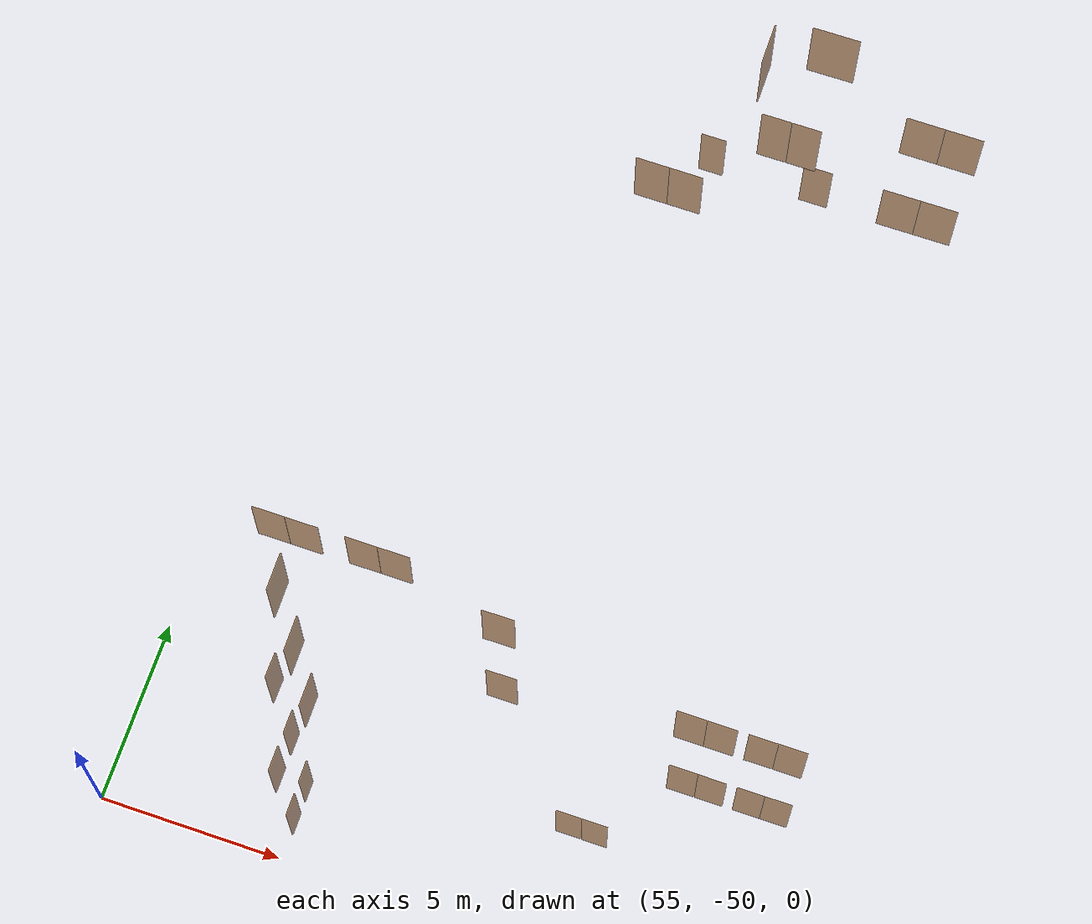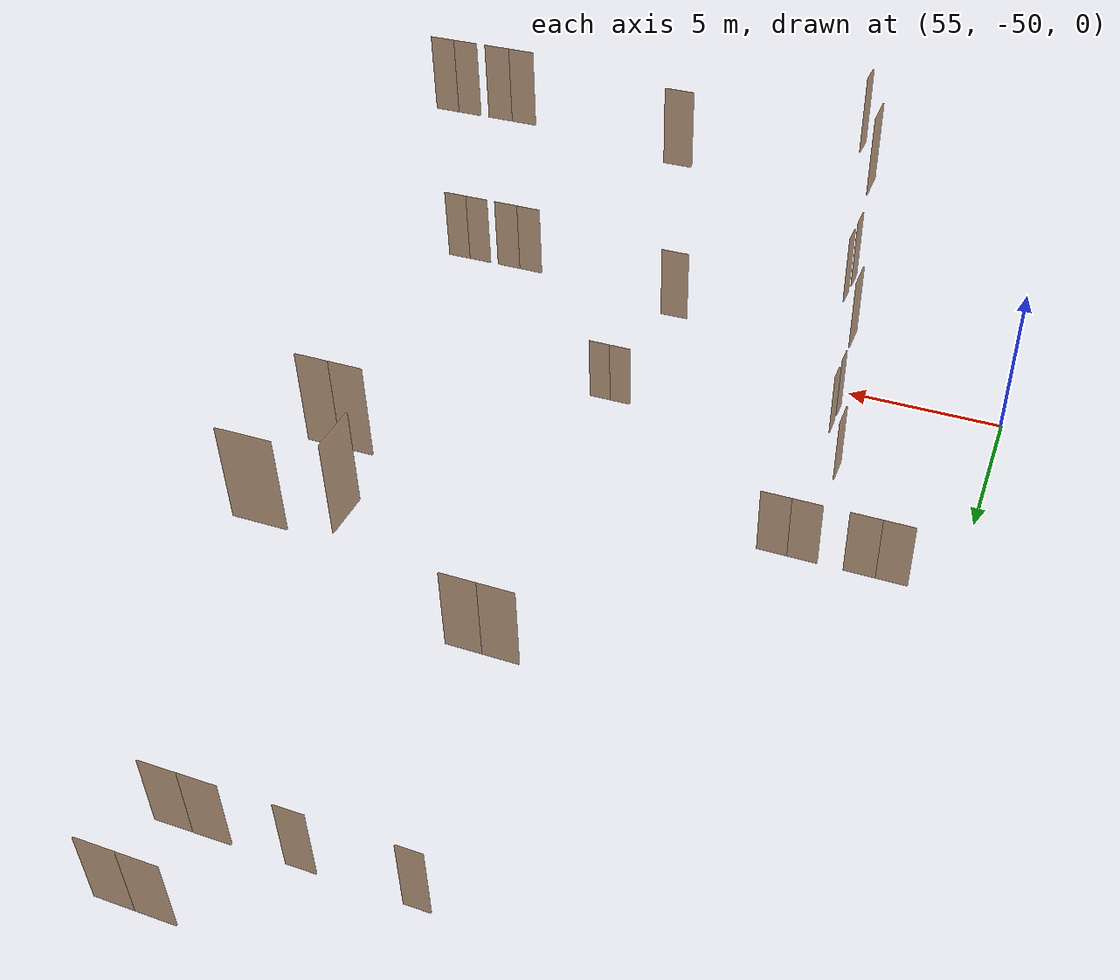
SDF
<sdf version="1.7">
 <world name="sim_world">
  <model name="p36">
   <pose>57.253548043020984 -41.73374122248232 0.0 0 0 -0.0015087211560618078</pose>
   <link name="right">
    <pose>0.4713199047334119 0 1.11 0 0 0</pose>
    <visual name="right_visual">
     <geometry><box><size>0.9326398094668238 0.03 2.2</size></box></geometry>
     <material>
      <ambient>0.5 0.25 0 0.6</ambient>
      <diffuse>0.5 0.25 0 0.6</diffuse>
      <pbr><metal><metalness>0.0</metalness></metal></pbr>
     </material>
    </visual>
    <collision name="right_collision">
     <geometry><box><size>0.9326398094668238 0.03 2.2</size></box></geometry>
     <surface><contact><collide_bitmask>0x02</collide_bitmask></contact></surface>
    </collision>
    <inertial>
     <mass>50.0</mass>
     <inertia><ixx>20.17041666666667</ixx><iyy>23.790904225842976</iyy><izz>3.627987559176306</izz></inertia>
    </inertial>
   </link>
   <joint name="right_joint" type="revolute">
    <parent>world</parent>
    <child>right</child>
    <axis><xyz>0 0 -1</xyz><limit><lower>0</lower><upper>1.57</upper></limit></axis>
    <pose>0.4713199047334119 0 0 0 0 0</pose>
   </joint>
   <link name="left">
    <pose>-0.4713199047334119 0 1.11 0 0 0</pose>
    <visual name="left_visual">
     <geometry><box><size>0.9326398094668238 0.03 2.2</size></box></geometry>
     <material>
      <ambient>0.5 0.25 0 0.6</ambient>
      <diffuse>0.5 0.25 0 0.6</diffuse>
      <pbr><metal><metalness>0.0</metalness></metal></pbr>
     </material>
    </visual>
    <collision name="left_collision">
     <geometry><box><size>0.9326398094668238 0.03 2.2</size></box></geometry>
     <surface><contact><collide_bitmask>0x02</collide_bitmask></contact></surface>
    </collision>
    <inertial>
     <mass>50.0</mass>
     <inertia><ixx>20.17041666666667</ixx><iyy>23.790904225842976</iyy><izz>3.627987559176306</izz></inertia>
    </inertial>
   </link>
   <joint name="left_joint" type="revolute">
    <parent>world</parent>
    <child>left</child>
    <axis><xyz>0 0 -1</xyz><limit><lower>-1.57</lower><upper>0</upper></limit></axis>
    <pose>-0.4713199047334119 0 0 0 0 0</pose>
   </joint>
   <plugin name="register_component" filename="libregister_component.so">
    <component name="Door">
     <v_max_door>0.5</v_max_door>
     <a_max_door>0.3</a_max_door>
     <a_nom_door>0.15</a_nom_door>
     <dx_min_door>0.01</dx_min_door>
     <f_max_door>500.0</f_max_door>
     <ros_interface>true</ros_interface>
     <door name="p36" type="DoubleSwingDoor" left_joint_name="left_joint" right_joint_name="right_joint"/>
    </component>
   </plugin>
  </model>
  <model name="p37">
   <pose>59.86547065272144 -41.7336523362271 0.0 0 0 0.0</pose>
   <link name="right">
    <pose>0.45803087315931457 0 1.11 0 0 0</pose>
    <visual name="right_visual">
     <geometry><box><size>0.9060617463186291 0.03 2.2</size></box></geometry>
     <material>
      <ambient>0.5 0.25 0 0.6</ambient>
      <diffuse>0.5 0.25 0 0.6</diffuse>
      <pbr><metal><metalness>0.0</metalness></metal></pbr>
     </material>
    </visual>
    <collision name="right_collision">
     <geometry><box><size>0.9060617463186291 0.03 2.2</size></box></geometry>
     <surface><contact><collide_bitmask>0x02</collide_bitmask></contact></surface>
    </collision>
    <inertial>
     <mass>50.0</mass>
     <inertia><ixx>20.17041666666667</ixx><iyy>23.58728286725819</iyy><izz>3.4243662005915163</izz></inertia>
    </inertial>
   </link>
   <joint name="right_joint" type="revolute">
    <parent>world</parent>
    <child>right</child>
    <axis><xyz>0 0 -1</xyz><limit><lower>0</lower><upper>1.57</upper></limit></axis>
    <pose>0.45803087315931457 0 0 0 0 0</pose>
   </joint>
   <link name="left">
    <pose>-0.45803087315931457 0 1.11 0 0 0</pose>
    <visual name="left_visual">
     <geometry><box><size>0.9060617463186291 0.03 2.2</size></box></geometry>
     <material>
      <ambient>0.5 0.25 0 0.6</ambient>
      <diffuse>0.5 0.25 0 0.6</diffuse>
      <pbr><metal><metalness>0.0</metalness></metal></pbr>
     </material>
    </visual>
    <collision name="left_collision">
     <geometry><box><size>0.9060617463186291 0.03 2.2</size></box></geometry>
     <surface><contact><collide_bitmask>0x02</collide_bitmask></contact></surface>
    </collision>
    <inertial>
     <mass>50.0</mass>
     <inertia><ixx>20.17041666666667</ixx><iyy>23.58728286725819</iyy><izz>3.4243662005915163</izz></inertia>
    </inertial>
   </link>
   <joint name="left_joint" type="revolute">
    <parent>world</parent>
    <child>left</child>
    <axis><xyz>0 0 -1</xyz><limit><lower>-1.57</lower><upper>0</upper></limit></axis>
    <pose>-0.45803087315931457 0 0 0 0 0</pose>
   </joint>
   <plugin name="register_component" filename="libregister_component.so">
    <component name="Door">
     <v_max_door>0.5</v_max_door>
     <a_max_door>0.3</a_max_door>
     <a_nom_door>0.15</a_nom_door>
     <dx_min_door>0.01</dx_min_door>
     <f_max_door>500.0</f_max_door>
     <ros_interface>true</ros_interface>
     <door name="p37" type="DoubleSwingDoor" left_joint_name="left_joint" right_joint_name="right_joint"/>
    </component>
   </plugin>
  </model>
  <model name="p40">
   <pose>59.4214393647596 -45.984537495185364 0.0 0 0 1.5707963267948966</pose>
   <link name="right">
    <pose>0 0 1.11 0 0 0</pose>
    <visual name="right_visual">
     <geometry><box><size>0.9311054487274484 0.03 2.2</size></box></geometry>
     <material>
      <ambient>0.5 0.25 0 0.6</ambient>
      <diffuse>0.5 0.25 0 0.6</diffuse>
      <pbr><metal><metalness>0.0</metalness></metal></pbr>
     </material>
    </visual>
    <collision name="right_collision">
     <geometry><box><size>0.9311054487274484 0.03 2.2</size></box></geometry>
     <surface><contact><collide_bitmask>0x02</collide_bitmask></contact></surface>
    </collision>
    <inertial>
     <mass>50.0</mass>
     <inertia><ixx>20.17041666666667</ixx><iyy>23.778988986041433</iyy><izz>3.6160723193747626</izz></inertia>
    </inertial>
   </link>
   <joint name="right_joint" type="revolute">
    <parent>world</parent>
    <child>right</child>
    <axis><xyz>0 0 1</xyz><limit><lower>0</lower><upper>1.57</upper></limit></axis>
    <pose>0.4705527243637242 0 0 0 0 0</pose>
   </joint>
   <plugin name="register_component" filename="libregister_component.so">
    <component name="Door">
     <v_max_door>0.5</v_max_door>
     <a_max_door>0.3</a_max_door>
     <a_nom_door>0.15</a_nom_door>
     <dx_min_door>0.01</dx_min_door>
     <f_max_door>500.0</f_max_door>
     <ros_interface>true</ros_interface>
     <door name="p40" type="SwingDoor" left_joint_name="empty_joint" right_joint_name="right_joint"/>
    </component>
   </plugin>
  </model>
  <model name="p47">
   <pose>60.11799650380734 -48.058198275606685 0.0 0 0 1.5753621633303083</pose>
   <link name="right">
    <pose>0 0 1.11 0 0 0</pose>
    <visual name="right_visual">
     <geometry><box><size>0.5837663739558685 0.03 2.2</size></box></geometry>
     <material>
      <ambient>0.5 0.25 0 0.6</ambient>
      <diffuse>0.5 0.25 0 0.6</diffuse>
      <pbr><metal><metalness>0.0</metalness></metal></pbr>
     </material>
    </visual>
    <collision name="right_collision">
     <geometry><box><size>0.5837663739558685 0.03 2.2</size></box></geometry>
     <surface><contact><collide_bitmask>0x02</collide_bitmask></contact></surface>
    </collision>
    <inertial>
     <mass>50.0</mass>
     <inertia><ixx>20.17041666666667</ixx><iyy>21.586596580673266</iyy><izz>1.4236799140065957</izz></inertia>
    </inertial>
   </link>
   <joint name="right_joint" type="revolute">
    <parent>world</parent>
    <child>right</child>
    <axis><xyz>0 0 1</xyz><limit><lower>0</lower><upper>1.57</upper></limit></axis>
    <pose>0.29688318697793425 0 0 0 0 0</pose>
   </joint>
   <plugin name="register_component" filename="libregister_component.so">
    <component name="Door">
     <v_max_door>0.5</v_max_door>
     <a_max_door>0.3</a_max_door>
     <a_nom_door>0.15</a_nom_door>
     <dx_min_door>0.01</dx_min_door>
     <f_max_door>500.0</f_max_door>
     <ros_interface>true</ros_interface>
     <door name="p47" type="SwingDoor" left_joint_name="empty_joint" right_joint_name="right_joint"/>
    </component>
   </plugin>
  </model>
  <model name="p48">
   <pose>60.119352019199475 -48.98182646440109 0.0 0 0 1.5707963267948966</pose>
   <link name="right">
    <pose>0 0 1.11 0 0 0</pose>
    <visual name="right_visual">
     <geometry><box><size>0.6068483896773438 0.03 2.2</size></box></geometry>
     <material>
      <ambient>0.5 0.25 0 0.6</ambient>
      <diffuse>0.5 0.25 0 0.6</diffuse>
      <pbr><metal><metalness>0.0</metalness></metal></pbr>
     </material>
    </visual>
    <collision name="right_collision">
     <geometry><box><size>0.6068483896773438 0.03 2.2</size></box></geometry>
     <surface><contact><collide_bitmask>0x02</collide_bitmask></contact></surface>
    </collision>
    <inertial>
     <mass>50.0</mass>
     <inertia><ixx>20.17041666666667</ixx><iyy>21.701104033558277</iyy><izz>1.5381873668916055</izz></inertia>
    </inertial>
   </link>
   <joint name="right_joint" type="revolute">
    <parent>world</parent>
    <child>right</child>
    <axis><xyz>0 0 1</xyz><limit><lower>0</lower><upper>1.57</upper></limit></axis>
    <pose>0.3084241948386719 0 0 0 0 0</pose>
   </joint>
   <plugin name="register_component" filename="libregister_component.so">
    <component name="Door">
     <v_max_door>0.5</v_max_door>
     <a_max_door>0.3</a_max_door>
     <a_nom_door>0.15</a_nom_door>
     <dx_min_door>0.01</dx_min_door>
     <f_max_door>500.0</f_max_door>
     <ros_interface>true</ros_interface>
     <door name="p48" type="SwingDoor" left_joint_name="empty_joint" right_joint_name="right_joint"/>
    </component>
   </plugin>
  </model>
  <model name="p50">
   <pose>67.3379603567302 -46.933231607952386 0.0 0 0 0.0</pose>
   <link name="right">
    <pose>0.35308953808776167 0 1.11 0 0 0</pose>
    <visual name="right_visual">
     <geometry><box><size>0.6961790761755233 0.03 2.2</size></box></geometry>
     <material>
      <ambient>0.5 0.25 0 0.6</ambient>
      <diffuse>0.5 0.25 0 0.6</diffuse>
      <pbr><metal><metalness>0.0</metalness></metal></pbr>
     </material>
    </visual>
    <collision name="right_collision">
     <geometry><box><size>0.6961790761755233 0.03 2.2</size></box></geometry>
     <surface><contact><collide_bitmask>0x02</collide_bitmask></contact></surface>
    </collision>
    <inertial>
     <mass>50.0</mass>
     <inertia><ixx>20.17041666666667</ixx><iyy>22.186105442102527</iyy><izz>2.023188775435855</izz></inertia>
    </inertial>
   </link>
   <joint name="right_joint" type="revolute">
    <parent>world</parent>
    <child>right</child>
    <axis><xyz>0 0 -1</xyz><limit><lower>0</lower><upper>1.57</upper></limit></axis>
    <pose>0.35308953808776167 0 0 0 0 0</pose>
   </joint>
   <link name="left">
    <pose>-0.35308953808776167 0 1.11 0 0 0</pose>
    <visual name="left_visual">
     <geometry><box><size>0.6961790761755233 0.03 2.2</size></box></geometry>
     <material>
      <ambient>0.5 0.25 0 0.6</ambient>
      <diffuse>0.5 0.25 0 0.6</diffuse>
      <pbr><metal><metalness>0.0</metalness></metal></pbr>
     </material>
    </visual>
    <collision name="left_collision">
     <geometry><box><size>0.6961790761755233 0.03 2.2</size></box></geometry>
     <surface><contact><collide_bitmask>0x02</collide_bitmask></contact></surface>
    </collision>
    <inertial>
     <mass>50.0</mass>
     <inertia><ixx>20.17041666666667</ixx><iyy>22.186105442102527</iyy><izz>2.023188775435855</izz></inertia>
    </inertial>
   </link>
   <joint name="left_joint" type="revolute">
    <parent>world</parent>
    <child>left</child>
    <axis><xyz>0 0 -1</xyz><limit><lower>-1.57</lower><upper>0</upper></limit></axis>
    <pose>-0.35308953808776167 0 0 0 0 0</pose>
   </joint>
   <plugin name="register_component" filename="libregister_component.so">
    <component name="Door">
     <v_max_door>0.5</v_max_door>
     <a_max_door>0.3</a_max_door>
     <a_nom_door>0.15</a_nom_door>
     <dx_min_door>0.01</dx_min_door>
     <f_max_door>500.0</f_max_door>
     <ros_interface>true</ros_interface>
     <door name="p50" type="DoubleSwingDoor" left_joint_name="left_joint" right_joint_name="right_joint"/>
    </component>
   </plugin>
  </model>
  <model name="p52">
   <pose>64.63911810020448 -27.495051998459324 0.0 0 0 -0.0011107335532778689</pose>
   <link name="right">
    <pose>0 0 1.11 0 0 0</pose>
    <visual name="right_visual">
     <geometry><box><size>0.7102235487809077 0.03 2.2</size></box></geometry>
     <material>
      <ambient>0.5 0.25 0 0.6</ambient>
      <diffuse>0.5 0.25 0 0.6</diffuse>
      <pbr><metal><metalness>0.0</metalness></metal></pbr>
     </material>
    </visual>
    <collision name="right_collision">
     <geometry><box><size>0.7102235487809077 0.03 2.2</size></box></geometry>
     <surface><contact><collide_bitmask>0x02</collide_bitmask></contact></surface>
    </collision>
    <inertial>
     <mass>50.0</mass>
     <inertia><ixx>20.17041666666667</ixx><iyy>22.268406205178945</iyy><izz>2.1054895385122765</izz></inertia>
    </inertial>
   </link>
   <joint name="right_joint" type="revolute">
    <parent>world</parent>
    <child>right</child>
    <axis><xyz>0 0 -1</xyz><limit><lower>0</lower><upper>1.57</upper></limit></axis>
    <pose>0.36011177439045383 0 0 0 0 0</pose>
   </joint>
   <plugin name="register_component" filename="libregister_component.so">
    <component name="Door">
     <v_max_door>0.5</v_max_door>
     <a_max_door>0.3</a_max_door>
     <a_nom_door>0.15</a_nom_door>
     <dx_min_door>0.01</dx_min_door>
     <f_max_door>500.0</f_max_door>
     <ros_interface>true</ros_interface>
     <door name="p52" type="SwingDoor" left_joint_name="empty_joint" right_joint_name="right_joint"/>
    </component>
   </plugin>
  </model>
  <model name="p53">
   <pose>67.66810613018879 -27.495451986607826 0.0 0 0 0.0</pose>
   <link name="right">
    <pose>0 0 1.11 0 0 0</pose>
    <visual name="right_visual">
     <geometry><box><size>0.8219753488785437 0.03 2.2</size></box></geometry>
     <material>
      <ambient>0.5 0.25 0 0.6</ambient>
      <diffuse>0.5 0.25 0 0.6</diffuse>
      <pbr><metal><metalness>0.0</metalness></metal></pbr>
     </material>
    </visual>
    <collision name="right_collision">
     <geometry><box><size>0.8219753488785437 0.03 2.2</size></box></geometry>
     <surface><contact><collide_bitmask>0x02</collide_bitmask></contact></surface>
    </collision>
    <inertial>
     <mass>50.0</mass>
     <inertia><ixx>20.17041666666667</ixx><iyy>22.98184780901669</iyy><izz>2.818931142350016</izz></inertia>
    </inertial>
   </link>
   <joint name="right_joint" type="revolute">
    <parent>world</parent>
    <child>right</child>
    <axis><xyz>0 0 -1</xyz><limit><lower>0</lower><upper>1.57</upper></limit></axis>
    <pose>0.41598767443927187 0 0 0 0 0</pose>
   </joint>
   <plugin name="register_component" filename="libregister_component.so">
    <component name="Door">
     <v_max_door>0.5</v_max_door>
     <a_max_door>0.3</a_max_door>
     <a_nom_door>0.15</a_nom_door>
     <dx_min_door>0.01</dx_min_door>
     <f_max_door>500.0</f_max_door>
     <ros_interface>true</ros_interface>
     <door name="p53" type="SwingDoor" left_joint_name="empty_joint" right_joint_name="right_joint"/>
    </component>
   </plugin>
  </model>
  <model name="p60">
   <pose>70.61213001096269 -27.494674231874633 0.0 0 0 -3.138353481110359</pose>
   <link name="right">
    <pose>0.5385313132417794 0 1.11 0 0 0</pose>
    <visual name="right_visual">
     <geometry><box><size>1.0670626264835588 0.03 2.2</size></box></geometry>
     <material>
      <ambient>0.5 0.25 0 0.6</ambient>
      <diffuse>0.5 0.25 0 0.6</diffuse>
      <pbr><metal><metalness>0.0</metalness></metal></pbr>
     </material>
    </visual>
    <collision name="right_collision">
     <geometry><box><size>1.0670626264835588 0.03 2.2</size></box></geometry>
     <surface><contact><collide_bitmask>0x02</collide_bitmask></contact></surface>
    </collision>
    <inertial>
     <mass>50.0</mass>
     <inertia><ixx>20.17041666666667</ixx><iyy>24.910927703491634</iyy><izz>4.748011036824962</izz></inertia>
    </inertial>
   </link>
   <joint name="right_joint" type="prismatic">
    <parent>world</parent>
    <child>right</child>
    <axis>
     <xyz>1 0 0</xyz>
     <limit><lower>0.0</lower><upper>1.0770626264835588</upper><effort>500.0</effort></limit>
    </axis>
   </joint>
   <link name="left">
    <pose>-0.5385313132417794 0 1.11 0 0 0</pose>
    <visual name="left_visual">
     <geometry><box><size>1.0670626264835588 0.03 2.2</size></box></geometry>
     <material>
      <ambient>0.5 0.25 0 0.6</ambient>
      <diffuse>0.5 0.25 0 0.6</diffuse>
      <pbr><metal><metalness>0.0</metalness></metal></pbr>
     </material>
    </visual>
    <collision name="left_collision">
     <geometry><box><size>1.0670626264835588 0.03 2.2</size></box></geometry>
     <surface><contact><collide_bitmask>0x02</collide_bitmask></contact></surface>
    </collision>
    <inertial>
     <mass>50.0</mass>
     <inertia><ixx>20.17041666666667</ixx><iyy>24.910927703491634</iyy><izz>4.748011036824962</izz></inertia>
    </inertial>
   </link>
   <joint name="left_joint" type="prismatic">
    <parent>world</parent>
    <child>left</child>
    <axis>
     <xyz>1 0 0</xyz>
     <limit><lower>-1.0770626264835588</lower><upper>0.0</upper><effort>500.0</effort></limit>
    </axis>
   </joint>
   <plugin name="register_component" filename="libregister_component.so">
    <component name="Door">
     <v_max_door>0.2</v_max_door>
     <a_max_door>0.2</a_max_door>
     <a_nom_door>0.08</a_nom_door>
     <dx_min_door>0.001</dx_min_door>
     <f_max_door>100.0</f_max_door>
     <ros_interface>true</ros_interface>
     <door name="p60" type="DoubleSlidingDoor" left_joint_name="left_joint" right_joint_name="right_joint"/>
    </component>
   </plugin>
  </model>
  <model name="p61">
   <pose>70.64111804094699 -25.195986785576743 0.0 0 0 3.14006148960945</pose>
   <link name="right">
    <pose>0.5587452106955132 0 1.11 0 0 0</pose>
    <visual name="right_visual">
     <geometry><box><size>1.1074904213910264 0.03 2.2</size></box></geometry>
     <material>
      <ambient>0.5 0.25 0 0.6</ambient>
      <diffuse>0.5 0.25 0 0.6</diffuse>
      <pbr><metal><metalness>0.0</metalness></metal></pbr>
     </material>
    </visual>
    <collision name="right_collision">
     <geometry><box><size>1.1074904213910264 0.03 2.2</size></box></geometry>
     <surface><contact><collide_bitmask>0x02</collide_bitmask></contact></surface>
    </collision>
    <inertial>
     <mass>50.0</mass>
     <inertia><ixx>20.17041666666667</ixx><iyy>25.277229306136977</iyy><izz>5.114312639470305</izz></inertia>
    </inertial>
   </link>
   <joint name="right_joint" type="prismatic">
    <parent>world</parent>
    <child>right</child>
    <axis>
     <xyz>1 0 0</xyz>
     <limit><lower>0.0</lower><upper>1.1174904213910264</upper><effort>500.0</effort></limit>
    </axis>
   </joint>
   <link name="left">
    <pose>-0.5587452106955132 0 1.11 0 0 0</pose>
    <visual name="left_visual">
     <geometry><box><size>1.1074904213910264 0.03 2.2</size></box></geometry>
     <material>
      <ambient>0.5 0.25 0 0.6</ambient>
      <diffuse>0.5 0.25 0 0.6</diffuse>
      <pbr><metal><metalness>0.0</metalness></metal></pbr>
     </material>
    </visual>
    <collision name="left_collision">
     <geometry><box><size>1.1074904213910264 0.03 2.2</size></box></geometry>
     <surface><contact><collide_bitmask>0x02</collide_bitmask></contact></surface>
    </collision>
    <inertial>
     <mass>50.0</mass>
     <inertia><ixx>20.17041666666667</ixx><iyy>25.277229306136977</iyy><izz>5.114312639470305</izz></inertia>
    </inertial>
   </link>
   <joint name="left_joint" type="prismatic">
    <parent>world</parent>
    <child>left</child>
    <axis>
     <xyz>1 0 0</xyz>
     <limit><lower>-1.1174904213910264</lower><upper>0.0</upper><effort>500.0</effort></limit>
    </axis>
   </joint>
   <plugin name="register_component" filename="libregister_component.so">
    <component name="Door">
     <v_max_door>0.2</v_max_door>
     <a_max_door>0.2</a_max_door>
     <a_nom_door>0.08</a_nom_door>
     <dx_min_door>0.001</dx_min_door>
     <f_max_door>100.0</f_max_door>
     <ros_interface>true</ros_interface>
     <door name="p61" type="DoubleSlidingDoor" left_joint_name="left_joint" right_joint_name="right_joint"/>
    </component>
   </plugin>
  </model>
  <model name="puerta20">
   <pose>64.31899034155254 -31.035027182858887 5.0 0 0 3.140084785537927</pose>
   <link name="right">
    <pose>0.45829132977408504 0 1.11 0 0 0</pose>
    <visual name="right_visual">
     <geometry><box><size>0.9065826595481701 0.03 2.2</size></box></geometry>
     <material>
      <ambient>0.5 0.25 0 0.6</ambient>
      <diffuse>0.5 0.25 0 0.6</diffuse>
      <pbr><metal><metalness>0.0</metalness></metal></pbr>
     </material>
    </visual>
    <collision name="right_collision">
     <geometry><box><size>0.9065826595481701 0.03 2.2</size></box></geometry>
     <surface><contact><collide_bitmask>0x02</collide_bitmask></contact></surface>
    </collision>
    <inertial>
     <mass>50.0</mass>
     <inertia><ixx>20.17041666666667</ixx><iyy>23.591217160805975</iyy><izz>3.4283004941393056</izz></inertia>
    </inertial>
   </link>
   <joint name="right_joint" type="revolute">
    <parent>world</parent>
    <child>right</child>
    <axis><xyz>0 0 -1</xyz><limit><lower>0</lower><upper>1.57</upper></limit></axis>
    <pose>0.45829132977408504 0 0 0 0 0</pose>
   </joint>
   <link name="left">
    <pose>-0.45829132977408504 0 1.11 0 0 0</pose>
    <visual name="left_visual">
     <geometry><box><size>0.9065826595481701 0.03 2.2</size></box></geometry>
     <material>
      <ambient>0.5 0.25 0 0.6</ambient>
      <diffuse>0.5 0.25 0 0.6</diffuse>
      <pbr><metal><metalness>0.0</metalness></metal></pbr>
     </material>
    </visual>
    <collision name="left_collision">
     <geometry><box><size>0.9065826595481701 0.03 2.2</size></box></geometry>
     <surface><contact><collide_bitmask>0x02</collide_bitmask></contact></surface>
    </collision>
    <inertial>
     <mass>50.0</mass>
     <inertia><ixx>20.17041666666667</ixx><iyy>23.591217160805975</iyy><izz>3.4283004941393056</izz></inertia>
    </inertial>
   </link>
   <joint name="left_joint" type="revolute">
    <parent>world</parent>
    <child>left</child>
    <axis><xyz>0 0 -1</xyz><limit><lower>-1.57</lower><upper>0</upper></limit></axis>
    <pose>-0.45829132977408504 0 0 0 0 0</pose>
   </joint>
   <plugin name="register_component" filename="libregister_component.so">
    <component name="Door">
     <v_max_door>0.5</v_max_door>
     <a_max_door>0.3</a_max_door>
     <a_nom_door>0.15</a_nom_door>
     <dx_min_door>0.01</dx_min_door>
     <f_max_door>500.0</f_max_door>
     <ros_interface>true</ros_interface>
     <door name="puerta20" type="DoubleSwingDoor" left_joint_name="left_joint" right_joint_name="right_joint"/>
    </component>
   </plugin>
  </model>
  <model name="puerta54">
   <pose>64.6586508209391 -45.29081413870366 5.0 0 0 0.003183021485436914</pose>
   <link name="right">
    <pose>0 0 1.11 0 0 0</pose>
    <visual name="right_visual">
     <geometry><box><size>0.8041747967965366 0.03 2.2</size></box></geometry>
     <material>
      <ambient>0.5 0.25 0 0.6</ambient>
      <diffuse>0.5 0.25 0 0.6</diffuse>
      <pbr><metal><metalness>0.0</metalness></metal></pbr>
     </material>
    </visual>
    <collision name="right_collision">
     <geometry><box><size>0.8041747967965366 0.03 2.2</size></box></geometry>
     <surface><contact><collide_bitmask>0x02</collide_bitmask></contact></surface>
    </collision>
    <inertial>
     <mass>50.0</mass>
     <inertia><ixx>20.17041666666667</ixx><iyy>22.861237932511468</iyy><izz>2.698321265844796</izz></inertia>
    </inertial>
   </link>
   <joint name="right_joint" type="revolute">
    <parent>world</parent>
    <child>right</child>
    <axis><xyz>0 0 1</xyz><limit><lower>0</lower><upper>1.57</upper></limit></axis>
    <pose>0.4070873983982683 0 0 0 0 0</pose>
   </joint>
   <plugin name="register_component" filename="libregister_component.so">
    <component name="Door">
     <v_max_door>0.5</v_max_door>
     <a_max_door>0.3</a_max_door>
     <a_nom_door>0.15</a_nom_door>
     <dx_min_door>0.01</dx_min_door>
     <f_max_door>500.0</f_max_door>
     <ros_interface>true</ros_interface>
     <door name="puerta54" type="SwingDoor" left_joint_name="empty_joint" right_joint_name="right_joint"/>
    </component>
   </plugin>
  </model>
  <model name="puerta55">
   <pose>69.9805252283775 -46.11490506588056 5.0 0 0 -0.0033336670922358472</pose>
   <link name="right">
    <pose>0.3681004991342962 0 1.11 0 0 0</pose>
    <visual name="right_visual">
     <geometry><box><size>0.7262009982685924 0.03 2.2</size></box></geometry>
     <material>
      <ambient>0.5 0.25 0 0.6</ambient>
      <diffuse>0.5 0.25 0 0.6</diffuse>
      <pbr><metal><metalness>0.0</metalness></metal></pbr>
     </material>
    </visual>
    <collision name="right_collision">
     <geometry><box><size>0.7262009982685924 0.03 2.2</size></box></geometry>
     <surface><contact><collide_bitmask>0x02</collide_bitmask></contact></surface>
    </collision>
    <inertial>
     <mass>50.0</mass>
     <inertia><ixx>20.17041666666667</ixx><iyy>22.364032874526256</iyy><izz>2.201116207859584</izz></inertia>
    </inertial>
   </link>
   <joint name="right_joint" type="revolute">
    <parent>world</parent>
    <child>right</child>
    <axis><xyz>0 0 -1</xyz><limit><lower>0</lower><upper>1.57</upper></limit></axis>
    <pose>0.3681004991342962 0 0 0 0 0</pose>
   </joint>
   <link name="left">
    <pose>-0.3681004991342962 0 1.11 0 0 0</pose>
    <visual name="left_visual">
     <geometry><box><size>0.7262009982685924 0.03 2.2</size></box></geometry>
     <material>
      <ambient>0.5 0.25 0 0.6</ambient>
      <diffuse>0.5 0.25 0 0.6</diffuse>
      <pbr><metal><metalness>0.0</metalness></metal></pbr>
     </material>
    </visual>
    <collision name="left_collision">
     <geometry><box><size>0.7262009982685924 0.03 2.2</size></box></geometry>
     <surface><contact><collide_bitmask>0x02</collide_bitmask></contact></surface>
    </collision>
    <inertial>
     <mass>50.0</mass>
     <inertia><ixx>20.17041666666667</ixx><iyy>22.364032874526256</iyy><izz>2.201116207859584</izz></inertia>
    </inertial>
   </link>
   <joint name="left_joint" type="revolute">
    <parent>world</parent>
    <child>left</child>
    <axis><xyz>0 0 -1</xyz><limit><lower>-1.57</lower><upper>0</upper></limit></axis>
    <pose>-0.3681004991342962 0 0 0 0 0</pose>
   </joint>
   <plugin name="register_component" filename="libregister_component.so">
    <component name="Door">
     <v_max_door>0.5</v_max_door>
     <a_max_door>0.3</a_max_door>
     <a_nom_door>0.15</a_nom_door>
     <dx_min_door>0.01</dx_min_door>
     <f_max_door>500.0</f_max_door>
     <ros_interface>true</ros_interface>
     <door name="puerta55" type="DoubleSwingDoor" left_joint_name="left_joint" right_joint_name="right_joint"/>
    </component>
   </plugin>
  </model>
  <model name="puerta56">
   <pose>71.67385140359197 -46.11294571613294 5.0 0 0 0.00015305860082481711</pose>
   <link name="right">
    <pose>0.3538634916067768 0 1.11 0 0 0</pose>
    <visual name="right_visual">
     <geometry><box><size>0.6977269832135536 0.03 2.2</size></box></geometry>
     <material>
      <ambient>0.5 0.25 0 0.6</ambient>
      <diffuse>0.5 0.25 0 0.6</diffuse>
      <pbr><metal><metalness>0.0</metalness></metal></pbr>
     </material>
    </visual>
    <collision name="right_collision">
     <geometry><box><size>0.6977269832135536 0.03 2.2</size></box></geometry>
     <surface><contact><collide_bitmask>0x02</collide_bitmask></contact></surface>
    </collision>
    <inertial>
     <mass>50.0</mass>
     <inertia><ixx>20.17041666666667</ixx><iyy>22.195095596267866</iyy><izz>2.0321789296011943</izz></inertia>
    </inertial>
   </link>
   <joint name="right_joint" type="revolute">
    <parent>world</parent>
    <child>right</child>
    <axis><xyz>0 0 -1</xyz><limit><lower>0</lower><upper>1.57</upper></limit></axis>
    <pose>0.3538634916067768 0 0 0 0 0</pose>
   </joint>
   <link name="left">
    <pose>-0.3538634916067768 0 1.11 0 0 0</pose>
    <visual name="left_visual">
     <geometry><box><size>0.6977269832135536 0.03 2.2</size></box></geometry>
     <material>
      <ambient>0.5 0.25 0 0.6</ambient>
      <diffuse>0.5 0.25 0 0.6</diffuse>
      <pbr><metal><metalness>0.0</metalness></metal></pbr>
     </material>
    </visual>
    <collision name="left_collision">
     <geometry><box><size>0.6977269832135536 0.03 2.2</size></box></geometry>
     <surface><contact><collide_bitmask>0x02</collide_bitmask></contact></surface>
    </collision>
    <inertial>
     <mass>50.0</mass>
     <inertia><ixx>20.17041666666667</ixx><iyy>22.195095596267866</iyy><izz>2.0321789296011943</izz></inertia>
    </inertial>
   </link>
   <joint name="left_joint" type="revolute">
    <parent>world</parent>
    <child>left</child>
    <axis><xyz>0 0 -1</xyz><limit><lower>-1.57</lower><upper>0</upper></limit></axis>
    <pose>-0.3538634916067768 0 0 0 0 0</pose>
   </joint>
   <plugin name="register_component" filename="libregister_component.so">
    <component name="Door">
     <v_max_door>0.5</v_max_door>
     <a_max_door>0.3</a_max_door>
     <a_nom_door>0.15</a_nom_door>
     <dx_min_door>0.01</dx_min_door>
     <f_max_door>500.0</f_max_door>
     <ros_interface>true</ros_interface>
     <door name="puerta56" type="DoubleSwingDoor" left_joint_name="left_joint" right_joint_name="right_joint"/>
    </component>
   </plugin>
  </model>
  <model name="puertaX2">
   <pose>59.411288591046585 -45.94917255327597 5.0 0 0 1.576253877363648</pose>
   <link name="right">
    <pose>0 0 1.11 0 0 0</pose>
    <visual name="right_visual">
     <geometry><box><size>0.9368866629319129 0.03 2.2</size></box></geometry>
     <material>
      <ambient>0.5 0.25 0 0.6</ambient>
      <diffuse>0.5 0.25 0 0.6</diffuse>
      <pbr><metal><metalness>0.0</metalness></metal></pbr>
     </material>
    </visual>
    <collision name="right_collision">
     <geometry><box><size>0.9368866629319129 0.03 2.2</size></box></geometry>
     <surface><contact><collide_bitmask>0x02</collide_bitmask></contact></surface>
    </collision>
    <inertial>
     <mass>50.0</mass>
     <inertia><ixx>20.17041666666667</ixx><iyy>23.823985913248737</iyy><izz>3.6610692465820662</izz></inertia>
    </inertial>
   </link>
   <joint name="right_joint" type="revolute">
    <parent>world</parent>
    <child>right</child>
    <axis><xyz>0 0 1</xyz><limit><lower>0</lower><upper>1.57</upper></limit></axis>
    <pose>0.47344333146595646 0 0 0 0 0</pose>
   </joint>
   <plugin name="register_component" filename="libregister_component.so">
    <component name="Door">
     <v_max_door>0.5</v_max_door>
     <a_max_door>0.3</a_max_door>
     <a_nom_door>0.15</a_nom_door>
     <dx_min_door>0.01</dx_min_door>
     <f_max_door>500.0</f_max_door>
     <ros_interface>true</ros_interface>
     <door name="puertaX2" type="SwingDoor" left_joint_name="empty_joint" right_joint_name="right_joint"/>
    </component>
   </plugin>
  </model>
  <model name="puertaX3">
   <pose>60.13276312914342 -48.065809117141015 5.0 0 0 1.5651821019565748</pose>
   <link name="right">
    <pose>0 0 1.11 0 0 0</pose>
    <visual name="right_visual">
     <geometry><box><size>0.6027164720203364 0.03 2.2</size></box></geometry>
     <material>
      <ambient>0.5 0.25 0 0.6</ambient>
      <diffuse>0.5 0.25 0 0.6</diffuse>
      <pbr><metal><metalness>0.0</metalness></metal></pbr>
     </material>
    </visual>
    <collision name="right_collision">
     <geometry><box><size>0.6027164720203364 0.03 2.2</size></box></geometry>
     <surface><contact><collide_bitmask>0x02</collide_bitmask></contact></surface>
    </collision>
    <inertial>
     <mass>50.0</mass>
     <inertia><ixx>20.17041666666667</ixx><iyy>21.68027977351934</iyy><izz>1.517363106852671</izz></inertia>
    </inertial>
   </link>
   <joint name="right_joint" type="revolute">
    <parent>world</parent>
    <child>right</child>
    <axis><xyz>0 0 1</xyz><limit><lower>0</lower><upper>1.57</upper></limit></axis>
    <pose>0.3063582360101682 0 0 0 0 0</pose>
   </joint>
   <plugin name="register_component" filename="libregister_component.so">
    <component name="Door">
     <v_max_door>0.5</v_max_door>
     <a_max_door>0.3</a_max_door>
     <a_nom_door>0.15</a_nom_door>
     <dx_min_door>0.01</dx_min_door>
     <f_max_door>500.0</f_max_door>
     <ros_interface>true</ros_interface>
     <door name="puertaX3" type="SwingDoor" left_joint_name="empty_joint" right_joint_name="right_joint"/>
    </component>
   </plugin>
  </model>
  <model name="puertaX4">
   <pose>60.119533794390115 -49.0444765923759 5.0 0 0 1.5681062033324937</pose>
   <link name="right">
    <pose>0 0 1.11 0 0 0</pose>
    <visual name="right_visual">
     <geometry><box><size>0.6544252982011979 0.03 2.2</size></box></geometry>
     <material>
      <ambient>0.5 0.25 0 0.6</ambient>
      <diffuse>0.5 0.25 0 0.6</diffuse>
      <pbr><metal><metalness>0.0</metalness></metal></pbr>
     </material>
    </visual>
    <collision name="right_collision">
     <geometry><box><size>0.6544252982011979 0.03 2.2</size></box></geometry>
     <surface><contact><collide_bitmask>0x02</collide_bitmask></contact></surface>
    </collision>
    <inertial>
     <mass>50.0</mass>
     <inertia><ixx>20.17041666666667</ixx><iyy>21.951135295523866</iyy><izz>1.788218628857195</izz></inertia>
    </inertial>
   </link>
   <joint name="right_joint" type="revolute">
    <parent>world</parent>
    <child>right</child>
    <axis><xyz>0 0 1</xyz><limit><lower>0</lower><upper>1.57</upper></limit></axis>
    <pose>0.33221264910059894 0 0 0 0 0</pose>
   </joint>
   <plugin name="register_component" filename="libregister_component.so">
    <component name="Door">
     <v_max_door>0.5</v_max_door>
     <a_max_door>0.3</a_max_door>
     <a_nom_door>0.15</a_nom_door>
     <dx_min_door>0.01</dx_min_door>
     <f_max_door>500.0</f_max_door>
     <ros_interface>true</ros_interface>
     <door name="puertaX4" type="SwingDoor" left_joint_name="empty_joint" right_joint_name="right_joint"/>
    </component>
   </plugin>
  </model>
  <model name="puerta133">
   <pose>64.6589200595964 -45.29091311556866 10.0 0 0 0.0031847319623132288</pose>
   <link name="right">
    <pose>0 0 1.11 0 0 0</pose>
    <visual name="right_visual">
     <geometry><box><size>0.8041843125508646 0.03 2.2</size></box></geometry>
     <material>
      <ambient>0.5 0.25 0 0.6</ambient>
      <diffuse>0.5 0.25 0 0.6</diffuse>
      <pbr><metal><metalness>0.0</metalness></metal></pbr>
     </material>
    </visual>
    <collision name="right_collision">
     <geometry><box><size>0.8041843125508646 0.03 2.2</size></box></geometry>
     <surface><contact><collide_bitmask>0x02</collide_bitmask></contact></surface>
    </collision>
    <inertial>
     <mass>50.0</mass>
     <inertia><ixx>20.17041666666667</ixx><iyy>22.861301702303784</iyy><izz>2.698385035637112</izz></inertia>
    </inertial>
   </link>
   <joint name="right_joint" type="revolute">
    <parent>world</parent>
    <child>right</child>
    <axis><xyz>0 0 1</xyz><limit><lower>0</lower><upper>1.57</upper></limit></axis>
    <pose>0.4070921562754323 0 0 0 0 0</pose>
   </joint>
   <plugin name="register_component" filename="libregister_component.so">
    <component name="Door">
     <v_max_door>0.5</v_max_door>
     <a_max_door>0.3</a_max_door>
     <a_nom_door>0.15</a_nom_door>
     <dx_min_door>0.01</dx_min_door>
     <f_max_door>500.0</f_max_door>
     <ros_interface>true</ros_interface>
     <door name="puerta133" type="SwingDoor" left_joint_name="empty_joint" right_joint_name="right_joint"/>
    </component>
   </plugin>
  </model>
  <model name="puerta134">
   <pose>69.9808580766039 -46.115004571345 10.0 0 0 -0.0033319566153471175</pose>
   <link name="right">
    <pose>0.3681048013479417 0 1.11 0 0 0</pose>
    <visual name="right_visual">
     <geometry><box><size>0.7262096026958834 0.03 2.2</size></box></geometry>
     <material>
      <ambient>0.5 0.25 0 0.6</ambient>
      <diffuse>0.5 0.25 0 0.6</diffuse>
      <pbr><metal><metalness>0.0</metalness></metal></pbr>
     </material>
    </visual>
    <collision name="right_collision">
     <geometry><box><size>0.7262096026958834 0.03 2.2</size></box></geometry>
     <surface><contact><collide_bitmask>0x02</collide_bitmask></contact></surface>
    </collision>
    <inertial>
     <mass>50.0</mass>
     <inertia><ixx>20.17041666666667</ixx><iyy>22.364084946032143</iyy><izz>2.2011682793654703</izz></inertia>
    </inertial>
   </link>
   <joint name="right_joint" type="revolute">
    <parent>world</parent>
    <child>right</child>
    <axis><xyz>0 0 -1</xyz><limit><lower>0</lower><upper>1.57</upper></limit></axis>
    <pose>0.3681048013479417 0 0 0 0 0</pose>
   </joint>
   <link name="left">
    <pose>-0.3681048013479417 0 1.11 0 0 0</pose>
    <visual name="left_visual">
     <geometry><box><size>0.7262096026958834 0.03 2.2</size></box></geometry>
     <material>
      <ambient>0.5 0.25 0 0.6</ambient>
      <diffuse>0.5 0.25 0 0.6</diffuse>
      <pbr><metal><metalness>0.0</metalness></metal></pbr>
     </material>
    </visual>
    <collision name="left_collision">
     <geometry><box><size>0.7262096026958834 0.03 2.2</size></box></geometry>
     <surface><contact><collide_bitmask>0x02</collide_bitmask></contact></surface>
    </collision>
    <inertial>
     <mass>50.0</mass>
     <inertia><ixx>20.17041666666667</ixx><iyy>22.364084946032143</iyy><izz>2.2011682793654703</izz></inertia>
    </inertial>
   </link>
   <joint name="left_joint" type="revolute">
    <parent>world</parent>
    <child>left</child>
    <axis><xyz>0 0 -1</xyz><limit><lower>-1.57</lower><upper>0</upper></limit></axis>
    <pose>-0.3681048013479417 0 0 0 0 0</pose>
   </joint>
   <plugin name="register_component" filename="libregister_component.so">
    <component name="Door">
     <v_max_door>0.5</v_max_door>
     <a_max_door>0.3</a_max_door>
     <a_nom_door>0.15</a_nom_door>
     <dx_min_door>0.01</dx_min_door>
     <f_max_door>500.0</f_max_door>
     <ros_interface>true</ros_interface>
     <door name="puerta134" type="DoubleSwingDoor" left_joint_name="left_joint" right_joint_name="right_joint"/>
    </component>
   </plugin>
  </model>
  <model name="puerta135">
   <pose>71.6742040393938 -46.113042302268134 10.0 0 0 0.0001547690776992125</pose>
   <link name="right">
    <pose>0.35386762742388506 0 1.11 0 0 0</pose>
    <visual name="right_visual">
     <geometry><box><size>0.6977352548477701 0.03 2.2</size></box></geometry>
     <material>
      <ambient>0.5 0.25 0 0.6</ambient>
      <diffuse>0.5 0.25 0 0.6</diffuse>
      <pbr><metal><metalness>0.0</metalness></metal></pbr>
     </material>
    </visual>
    <collision name="right_collision">
     <geometry><box><size>0.6977352548477701 0.03 2.2</size></box></geometry>
     <surface><contact><collide_bitmask>0x02</collide_bitmask></contact></surface>
    </collision>
    <inertial>
     <mass>50.0</mass>
     <inertia><ixx>20.17041666666667</ixx><iyy>22.19514369107285</iyy><izz>2.032227024406178</izz></inertia>
    </inertial>
   </link>
   <joint name="right_joint" type="revolute">
    <parent>world</parent>
    <child>right</child>
    <axis><xyz>0 0 -1</xyz><limit><lower>0</lower><upper>1.57</upper></limit></axis>
    <pose>0.35386762742388506 0 0 0 0 0</pose>
   </joint>
   <link name="left">
    <pose>-0.35386762742388506 0 1.11 0 0 0</pose>
    <visual name="left_visual">
     <geometry><box><size>0.6977352548477701 0.03 2.2</size></box></geometry>
     <material>
      <ambient>0.5 0.25 0 0.6</ambient>
      <diffuse>0.5 0.25 0 0.6</diffuse>
      <pbr><metal><metalness>0.0</metalness></metal></pbr>
     </material>
    </visual>
    <collision name="left_collision">
     <geometry><box><size>0.6977352548477701 0.03 2.2</size></box></geometry>
     <surface><contact><collide_bitmask>0x02</collide_bitmask></contact></surface>
    </collision>
    <inertial>
     <mass>50.0</mass>
     <inertia><ixx>20.17041666666667</ixx><iyy>22.19514369107285</iyy><izz>2.032227024406178</izz></inertia>
    </inertial>
   </link>
   <joint name="left_joint" type="revolute">
    <parent>world</parent>
    <child>left</child>
    <axis><xyz>0 0 -1</xyz><limit><lower>-1.57</lower><upper>0</upper></limit></axis>
    <pose>-0.35386762742388506 0 0 0 0 0</pose>
   </joint>
   <plugin name="register_component" filename="libregister_component.so">
    <component name="Door">
     <v_max_door>0.5</v_max_door>
     <a_max_door>0.3</a_max_door>
     <a_nom_door>0.15</a_nom_door>
     <dx_min_door>0.01</dx_min_door>
     <f_max_door>500.0</f_max_door>
     <ros_interface>true</ros_interface>
     <door name="puerta135" type="DoubleSwingDoor" left_joint_name="left_joint" right_joint_name="right_joint"/>
    </component>
   </plugin>
  </model>
  <model name="puerta173">
   <pose>59.41149762672865 -45.94928820037054 10.0 0 0 1.5762555878405207</pose>
   <link name="right">
    <pose>0 0 1.11 0 0 0</pose>
    <visual name="right_visual">
     <geometry><box><size>0.936897729770291 0.03 2.2</size></box></geometry>
     <material>
      <ambient>0.5 0.25 0 0.6</ambient>
      <diffuse>0.5 0.25 0 0.6</diffuse>
      <pbr><metal><metalness>0.0</metalness></metal></pbr>
     </material>
    </visual>
    <collision name="right_collision">
     <geometry><box><size>0.936897729770291 0.03 2.2</size></box></geometry>
     <surface><contact><collide_bitmask>0x02</collide_bitmask></contact></surface>
    </collision>
    <inertial>
     <mass>50.0</mass>
     <inertia><ixx>20.17041666666667</ixx><iyy>23.824072316869692</iyy><izz>3.6611556502030216</izz></inertia>
    </inertial>
   </link>
   <joint name="right_joint" type="revolute">
    <parent>world</parent>
    <child>right</child>
    <axis><xyz>0 0 1</xyz><limit><lower>0</lower><upper>1.57</upper></limit></axis>
    <pose>0.4734488648851455 0 0 0 0 0</pose>
   </joint>
   <plugin name="register_component" filename="libregister_component.so">
    <component name="Door">
     <v_max_door>0.5</v_max_door>
     <a_max_door>0.3</a_max_door>
     <a_nom_door>0.15</a_nom_door>
     <dx_min_door>0.01</dx_min_door>
     <f_max_door>500.0</f_max_door>
     <ros_interface>true</ros_interface>
     <door name="puerta173" type="SwingDoor" left_joint_name="empty_joint" right_joint_name="right_joint"/>
    </component>
   </plugin>
  </model>
  <model name="puerta174">
   <pose>60.12765148071754 -48.073683298297894 10.0 0 0 1.5483474811685627</pose>
   <link name="right">
    <pose>0 0 1.11 0 0 0</pose>
    <visual name="right_visual">
     <geometry><box><size>0.6183423623300047 0.03 2.2</size></box></geometry>
     <material>
      <ambient>0.5 0.25 0 0.6</ambient>
      <diffuse>0.5 0.25 0 0.6</diffuse>
      <pbr><metal><metalness>0.0</metalness></metal></pbr>
     </material>
    </visual>
    <collision name="right_collision">
     <geometry><box><size>0.6183423623300047 0.03 2.2</size></box></geometry>
     <surface><contact><collide_bitmask>0x02</collide_bitmask></contact></surface>
    </collision>
    <inertial>
     <mass>50.0</mass>
     <inertia><ixx>20.17041666666667</ixx><iyy>21.759780321049384</iyy><izz>1.596863654382712</izz></inertia>
    </inertial>
   </link>
   <joint name="right_joint" type="revolute">
    <parent>world</parent>
    <child>right</child>
    <axis><xyz>0 0 1</xyz><limit><lower>0</lower><upper>1.57</upper></limit></axis>
    <pose>0.31417118116500237 0 0 0 0 0</pose>
   </joint>
   <plugin name="register_component" filename="libregister_component.so">
    <component name="Door">
     <v_max_door>0.5</v_max_door>
     <a_max_door>0.3</a_max_door>
     <a_nom_door>0.15</a_nom_door>
     <dx_min_door>0.01</dx_min_door>
     <f_max_door>500.0</f_max_door>
     <ros_interface>true</ros_interface>
     <door name="puerta174" type="SwingDoor" left_joint_name="empty_joint" right_joint_name="right_joint"/>
    </component>
   </plugin>
  </model>
  <model name="puerta198">
   <pose>67.65174721551593 -28.56937784046325 10.0 0 0 0.005119485756301618</pose>
   <link name="right">
    <pose>0 0 1.11 0 0 0</pose>
    <visual name="right_visual">
     <geometry><box><size>1.2165754638437396 0.03 2.2</size></box></geometry>
     <material>
      <ambient>0.5 0.25 0 0.6</ambient>
      <diffuse>0.5 0.25 0 0.6</diffuse>
      <pbr><metal><metalness>0.0</metalness></metal></pbr>
     </material>
    </visual>
    <collision name="right_collision">
     <geometry><box><size>1.2165754638437396 0.03 2.2</size></box></geometry>
     <surface><contact><collide_bitmask>0x02</collide_bitmask></contact></surface>
    </collision>
    <inertial>
     <mass>50.0</mass>
     <inertia><ixx>20.17041666666667</ixx><iyy>26.33356608011088</iyy><izz>6.17064941344421</izz></inertia>
    </inertial>
   </link>
   <joint name="right_joint" type="revolute">
    <parent>world</parent>
    <child>right</child>
    <axis><xyz>0 0 -1</xyz><limit><lower>0</lower><upper>1.57</upper></limit></axis>
    <pose>0.6132877319218698 0 0 0 0 0</pose>
   </joint>
   <plugin name="register_component" filename="libregister_component.so">
    <component name="Door">
     <v_max_door>0.5</v_max_door>
     <a_max_door>0.3</a_max_door>
     <a_nom_door>0.15</a_nom_door>
     <dx_min_door>0.01</dx_min_door>
     <f_max_door>500.0</f_max_door>
     <ros_interface>true</ros_interface>
     <door name="puerta198" type="SwingDoor" left_joint_name="empty_joint" right_joint_name="right_joint"/>
    </component>
   </plugin>
  </model>
  <model name="puerta199">
   <pose>66.14389369754954 -29.320918046746357 10.0 0 0 1.5691477647704664</pose>
   <link name="right">
    <pose>0 0 1.11 0 0 0</pose>
    <visual name="right_visual">
     <geometry><box><size>1.0622113756885734 0.03 2.2</size></box></geometry>
     <material>
      <ambient>0.5 0.25 0 0.6</ambient>
      <diffuse>0.5 0.25 0 0.6</diffuse>
      <pbr><metal><metalness>0.0</metalness></metal></pbr>
     </material>
    </visual>
    <collision name="right_collision">
     <geometry><box><size>1.0622113756885734 0.03 2.2</size></box></geometry>
     <surface><contact><collide_bitmask>0x02</collide_bitmask></contact></surface>
    </collision>
    <inertial>
     <mass>50.0</mass>
     <inertia><ixx>20.17041666666667</ixx><iyy>24.867887527675887</iyy><izz>4.704970861009215</izz></inertia>
    </inertial>
   </link>
   <joint name="right_joint" type="revolute">
    <parent>world</parent>
    <child>right</child>
    <axis><xyz>0 0 -1</xyz><limit><lower>0</lower><upper>1.57</upper></limit></axis>
    <pose>0.5361056878442867 0 0 0 0 0</pose>
   </joint>
   <plugin name="register_component" filename="libregister_component.so">
    <component name="Door">
     <v_max_door>0.5</v_max_door>
     <a_max_door>0.3</a_max_door>
     <a_nom_door>0.15</a_nom_door>
     <dx_min_door>0.01</dx_min_door>
     <f_max_door>500.0</f_max_door>
     <ros_interface>true</ros_interface>
     <door name="puerta199" type="SwingDoor" left_joint_name="empty_joint" right_joint_name="right_joint"/>
    </component>
   </plugin>
  </model>
  <model name="puerta200">
   <pose>67.31956192461031 -31.203770386181887 10.0 0 0 0.00015476907770442766</pose>
   <link name="right">
    <pose>0.38144851113272604 0 1.11 0 0 0</pose>
    <visual name="right_visual">
     <geometry><box><size>0.7528970222654521 0.03 2.2</size></box></geometry>
     <material>
      <ambient>0.5 0.25 0 0.6</ambient>
      <diffuse>0.5 0.25 0 0.6</diffuse>
      <pbr><metal><metalness>0.0</metalness></metal></pbr>
     </material>
    </visual>
    <collision name="right_collision">
     <geometry><box><size>0.7528970222654521 0.03 2.2</size></box></geometry>
     <surface><contact><collide_bitmask>0x02</collide_bitmask></contact></surface>
    </collision>
    <inertial>
     <mass>50.0</mass>
     <inertia><ixx>20.17041666666667</ixx><iyy>22.528558025567442</iyy><izz>2.3656413589007697</izz></inertia>
    </inertial>
   </link>
   <joint name="right_joint" type="revolute">
    <parent>world</parent>
    <child>right</child>
    <axis><xyz>0 0 -1</xyz><limit><lower>0</lower><upper>1.57</upper></limit></axis>
    <pose>0.38144851113272604 0 0 0 0 0</pose>
   </joint>
   <link name="left">
    <pose>-0.38144851113272604 0 1.11 0 0 0</pose>
    <visual name="left_visual">
     <geometry><box><size>0.7528970222654521 0.03 2.2</size></box></geometry>
     <material>
      <ambient>0.5 0.25 0 0.6</ambient>
      <diffuse>0.5 0.25 0 0.6</diffuse>
      <pbr><metal><metalness>0.0</metalness></metal></pbr>
     </material>
    </visual>
    <collision name="left_collision">
     <geometry><box><size>0.7528970222654521 0.03 2.2</size></box></geometry>
     <surface><contact><collide_bitmask>0x02</collide_bitmask></contact></surface>
    </collision>
    <inertial>
     <mass>50.0</mass>
     <inertia><ixx>20.17041666666667</ixx><iyy>22.528558025567442</iyy><izz>2.3656413589007697</izz></inertia>
    </inertial>
   </link>
   <joint name="left_joint" type="revolute">
    <parent>world</parent>
    <child>left</child>
    <axis><xyz>0 0 -1</xyz><limit><lower>-1.57</lower><upper>0</upper></limit></axis>
    <pose>-0.38144851113272604 0 0 0 0 0</pose>
   </joint>
   <plugin name="register_component" filename="libregister_component.so">
    <component name="Door">
     <v_max_door>0.5</v_max_door>
     <a_max_door>0.3</a_max_door>
     <a_nom_door>0.15</a_nom_door>
     <dx_min_door>0.01</dx_min_door>
     <f_max_door>500.0</f_max_door>
     <ros_interface>true</ros_interface>
     <door name="puerta200" type="DoubleSwingDoor" left_joint_name="left_joint" right_joint_name="right_joint"/>
    </component>
   </plugin>
  </model>
 </world>
</sdf>
